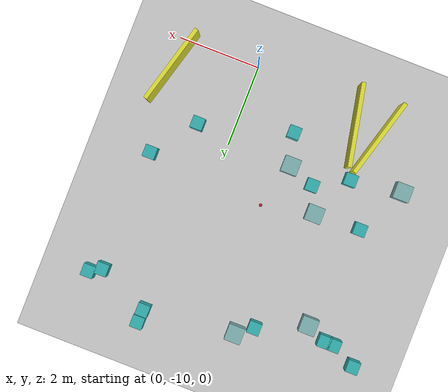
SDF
<sdf version="1.7">
 <world name="default">
  <model name="ground_plane">
   <static>1</static>
   <link name="link">
    <collision name="collision">
     <geometry><plane><normal>0 0 1</normal><size>100 100</size></plane></geometry>
     <surface><friction><ode><mu>100</mu><mu2>50</mu2></ode></friction></surface>
    </collision>
    <visual name="visual">
     <cast_shadows>0</cast_shadows>
     <geometry><plane><normal>0 0 1</normal><size>100 100</size></plane></geometry>
     <material>
      <script><uri>file://media/materials/scripts/gazebo.material</uri><name>Gazebo/Grey</name></script>
     </material>
    </visual>
   </link>
  </model>
  <model name="fl4sr_real_arena_8_target">
   <model name="target_ball_6">
    <link name="link">
     <pose>0 0 0.0375 0 -0 0</pose>
     <inertial>
      <mass>0.1467</mass>
      <inertia>
       <ixx>8.25187e-05</ixx>
       <ixy>0</ixy>
       <ixz>0</ixz>
       <iyy>8.25187e-05</iyy>
       <iyz>0</iyz>
       <izz>8.25187e-05</izz>
      </inertia>
     </inertial>
     <velocity_decay><linear>0</linear><angular>0.005</angular></velocity_decay>
     <visual name="visual">
      <geometry><sphere><radius>0.0375</radius></sphere></geometry>
      <material>
       <script><uri>file://media/materials/scripts/gazebo.material</uri><name>Gazebo/Red</name></script>
       <shader type="pixel"/>
      </material>
     </visual>
     <collision name="collision">
      <geometry><sphere><radius>0.0375</radius></sphere></geometry>
      <surface>
       <friction>
        <ode><mu>1</mu><mu2>1</mu2><fdir1>0 0 0</fdir1><slip1>0</slip1><slip2>0</slip2></ode>
        <torsional>
         <coefficient>1</coefficient>
         <patch_radius>0</patch_radius>
         <surface_radius>0.01</surface_radius>
         <use_patch_radius>0</use_patch_radius>
         <ode><slip>0</slip></ode>
        </torsional>
       </friction>
       <bounce><restitution_coefficient>0</restitution_coefficient><threshold>1e+06</threshold></bounce>
       <contact>
        <collide_without_contact>0</collide_without_contact>
        <collide_without_contact_bitmask>1</collide_without_contact_bitmask>
        <collide_bitmask>1</collide_bitmask>
        <ode>
         <soft_cfm>0</soft_cfm>
         <soft_erp>0.2</soft_erp>
         <kp>100000</kp>
         <kd>100</kd>
         <max_vel>100</max_vel>
         <min_depth>0.001</min_depth>
        </ode>
        <bullet>
         <split_impulse>1</split_impulse>
         <split_impulse_penetration_threshold>-0.01</split_impulse_penetration_threshold>
         <soft_cfm>0</soft_cfm>
         <soft_erp>0.2</soft_erp>
         <kp>100000</kp>
         <kd>100</kd>
        </bullet>
       </contact>
      </surface>
     </collision>
    </link>
    <static>0</static>
    <pose>-2.94744 -7.77192 0 0 -0 0</pose>
   </model>
   <static>0</static>
   <pose>1.69407 0.837481 0 0 -0 0</pose>
  </model>
  <model name="unit_box_0.3_0_clone_3">
   <model name="unit_box_0.3">
    <link name="link">
     <inertial>
      <mass>1</mass>
      <inertia>
       <ixx>0.166667</ixx>
       <ixy>0</ixy>
       <ixz>0</ixz>
       <iyy>0.166667</iyy>
       <iyz>0</iyz>
       <izz>0.166667</izz>
      </inertia>
     </inertial>
     <visual name="visual">
      <geometry><box><size>0.3 0.3 0.5</size></box></geometry>
      <material>
       <script><name>Gazebo/Grey</name><uri>file://media/materials/scripts/gazebo.material</uri></script>
       <shader type="pixel"><normal_map>__default__</normal_map></shader>
       <ambient>0.2 0.7 0.7 1</ambient>
       <diffuse>0.7 0.7 0.7 1</diffuse>
       <specular>0.01 0.01 0.01 1</specular>
       <emissive>0 0 0 1</emissive>
      </material>
     </visual>
     <collision name="collision">
      <geometry><box><size>0.3 0.3 0.5</size></box></geometry>
      <surface>
       <friction>
        <ode><mu>1</mu><mu2>1</mu2><fdir1>0 0 0</fdir1><slip1>0</slip1><slip2>0</slip2></ode>
        <torsional>
         <coefficient>1</coefficient>
         <patch_radius>0</patch_radius>
         <surface_radius>0</surface_radius>
         <use_patch_radius>1</use_patch_radius>
         <ode><slip>0</slip></ode>
        </torsional>
       </friction>
       <bounce><restitution_coefficient>0</restitution_coefficient><threshold>1e+06</threshold></bounce>
       <contact>
        <collide_without_contact>0</collide_without_contact>
        <collide_without_contact_bitmask>1</collide_without_contact_bitmask>
        <collide_bitmask>1</collide_bitmask>
        <ode>
         <soft_cfm>0</soft_cfm>
         <soft_erp>0.2</soft_erp>
         <kp>1e+13</kp>
         <kd>1</kd>
         <max_vel>0.01</max_vel>
         <min_depth>0</min_depth>
        </ode>
        <bullet>
         <split_impulse>1</split_impulse>
         <split_impulse_penetration_threshold>-0.01</split_impulse_penetration_threshold>
         <soft_cfm>0</soft_cfm>
         <soft_erp>0.2</soft_erp>
         <kp>1e+13</kp>
         <kd>1</kd>
        </bullet>
       </contact>
      </surface>
     </collision>
    </link>
    <static>0</static>
    <pose>1e-06 2e-06 0 0 -0 0</pose>
   </model>
   <static>1</static>
   <pose>1.99994 -4.00002 0.25 0 0 -1e-06</pose>
  </model>
  <model name="unit_box_0.3_0_clone_4">
   <model name="unit_box_0.3">
    <link name="link">
     <inertial>
      <mass>1</mass>
      <inertia>
       <ixx>0.166667</ixx>
       <ixy>0</ixy>
       <ixz>0</ixz>
       <iyy>0.166667</iyy>
       <iyz>0</iyz>
       <izz>0.166667</izz>
      </inertia>
     </inertial>
     <visual name="visual">
      <geometry><box><size>0.3 0.3 0.5</size></box></geometry>
      <material>
       <script><name>Gazebo/Grey</name><uri>file://media/materials/scripts/gazebo.material</uri></script>
       <shader type="pixel"><normal_map>__default__</normal_map></shader>
       <ambient>0.2 0.7 0.7 1</ambient>
       <diffuse>0.7 0.7 0.7 1</diffuse>
       <specular>0.01 0.01 0.01 1</specular>
       <emissive>0 0 0 1</emissive>
      </material>
     </visual>
     <collision name="collision">
      <geometry><box><size>0.3 0.3 0.5</size></box></geometry>
      <surface>
       <friction>
        <ode><mu>1</mu><mu2>1</mu2><fdir1>0 0 0</fdir1><slip1>0</slip1><slip2>0</slip2></ode>
        <torsional>
         <coefficient>1</coefficient>
         <patch_radius>0</patch_radius>
         <surface_radius>0</surface_radius>
         <use_patch_radius>1</use_patch_radius>
         <ode><slip>0</slip></ode>
        </torsional>
       </friction>
       <bounce><restitution_coefficient>0</restitution_coefficient><threshold>1e+06</threshold></bounce>
       <contact>
        <collide_without_contact>0</collide_without_contact>
        <collide_without_contact_bitmask>1</collide_without_contact_bitmask>
        <collide_bitmask>1</collide_bitmask>
        <ode>
         <soft_cfm>0</soft_cfm>
         <soft_erp>0.2</soft_erp>
         <kp>1e+13</kp>
         <kd>1</kd>
         <max_vel>0.01</max_vel>
         <min_depth>0</min_depth>
        </ode>
        <bullet>
         <split_impulse>1</split_impulse>
         <split_impulse_penetration_threshold>-0.01</split_impulse_penetration_threshold>
         <soft_cfm>0</soft_cfm>
         <soft_erp>0.2</soft_erp>
         <kp>1e+13</kp>
         <kd>1</kd>
        </bullet>
       </contact>
      </surface>
     </collision>
    </link>
    <static>0</static>
    <pose>1e-06 2e-06 0 0 -0 0</pose>
   </model>
   <static>1</static>
   <pose>1.71229 -4.15614 0.25 0 -0 0</pose>
  </model>
  <model name="unit_box_0.3_0_clone_4_clone">
   <model name="unit_box_0.3">
    <link name="link">
     <inertial>
      <mass>1</mass>
      <inertia>
       <ixx>0.166667</ixx>
       <ixy>0</ixy>
       <ixz>0</ixz>
       <iyy>0.166667</iyy>
       <iyz>0</iyz>
       <izz>0.166667</izz>
      </inertia>
     </inertial>
     <visual name="visual">
      <geometry><box><size>0.3 0.3 0.5</size></box></geometry>
      <material>
       <script><name>Gazebo/Grey</name><uri>file://media/materials/scripts/gazebo.material</uri></script>
       <shader type="pixel"><normal_map>__default__</normal_map></shader>
       <ambient>0.2 0.7 0.7 1</ambient>
       <diffuse>0.7 0.7 0.7 1</diffuse>
       <specular>0.01 0.01 0.01 1</specular>
       <emissive>0 0 0 1</emissive>
      </material>
     </visual>
     <collision name="collision">
      <geometry><box><size>0.3 0.3 0.5</size></box></geometry>
      <surface>
       <friction>
        <ode><mu>1</mu><mu2>1</mu2><fdir1>0 0 0</fdir1><slip1>0</slip1><slip2>0</slip2></ode>
        <torsional>
         <coefficient>1</coefficient>
         <patch_radius>0</patch_radius>
         <surface_radius>0</surface_radius>
         <use_patch_radius>1</use_patch_radius>
         <ode><slip>0</slip></ode>
        </torsional>
       </friction>
       <bounce><restitution_coefficient>0</restitution_coefficient><threshold>1e+06</threshold></bounce>
       <contact>
        <collide_without_contact>0</collide_without_contact>
        <collide_without_contact_bitmask>1</collide_without_contact_bitmask>
        <collide_bitmask>1</collide_bitmask>
        <ode>
         <soft_cfm>0</soft_cfm>
         <soft_erp>0.2</soft_erp>
         <kp>1e+13</kp>
         <kd>1</kd>
         <max_vel>0.01</max_vel>
         <min_depth>0</min_depth>
        </ode>
        <bullet>
         <split_impulse>1</split_impulse>
         <split_impulse_penetration_threshold>-0.01</split_impulse_penetration_threshold>
         <soft_cfm>0</soft_cfm>
         <soft_erp>0.2</soft_erp>
         <kp>1e+13</kp>
         <kd>1</kd>
        </bullet>
       </contact>
      </surface>
     </collision>
    </link>
    <static>0</static>
    <pose>1e-06 2e-06 0 0 -0 0</pose>
   </model>
   <static>1</static>
   <pose>0.457679 -3.60084 0.25 0 -0 0</pose>
  </model>
  <model name="unit_box_0.3_0_clone_4_clone_0">
   <model name="unit_box_0.3">
    <link name="link">
     <inertial>
      <mass>1</mass>
      <inertia>
       <ixx>0.166667</ixx>
       <ixy>0</ixy>
       <ixz>0</ixz>
       <iyy>0.166667</iyy>
       <iyz>0</iyz>
       <izz>0.166667</izz>
      </inertia>
     </inertial>
     <visual name="visual">
      <geometry><box><size>0.3 0.3 0.5</size></box></geometry>
      <material>
       <script><name>Gazebo/Grey</name><uri>file://media/materials/scripts/gazebo.material</uri></script>
       <shader type="pixel"><normal_map>__default__</normal_map></shader>
       <ambient>0.2 0.7 0.7 1</ambient>
       <diffuse>0.7 0.7 0.7 1</diffuse>
       <specular>0.01 0.01 0.01 1</specular>
       <emissive>0 0 0 1</emissive>
      </material>
     </visual>
     <collision name="collision">
      <geometry><box><size>0.3 0.3 0.5</size></box></geometry>
      <surface>
       <friction>
        <ode><mu>1</mu><mu2>1</mu2><fdir1>0 0 0</fdir1><slip1>0</slip1><slip2>0</slip2></ode>
        <torsional>
         <coefficient>1</coefficient>
         <patch_radius>0</patch_radius>
         <surface_radius>0</surface_radius>
         <use_patch_radius>1</use_patch_radius>
         <ode><slip>0</slip></ode>
        </torsional>
       </friction>
       <bounce><restitution_coefficient>0</restitution_coefficient><threshold>1e+06</threshold></bounce>
       <contact>
        <collide_without_contact>0</collide_without_contact>
        <collide_without_contact_bitmask>1</collide_without_contact_bitmask>
        <collide_bitmask>1</collide_bitmask>
        <ode>
         <soft_cfm>0</soft_cfm>
         <soft_erp>0.2</soft_erp>
         <kp>1e+13</kp>
         <kd>1</kd>
         <max_vel>0.01</max_vel>
         <min_depth>0</min_depth>
        </ode>
        <bullet>
         <split_impulse>1</split_impulse>
         <split_impulse_penetration_threshold>-0.01</split_impulse_penetration_threshold>
         <soft_cfm>0</soft_cfm>
         <soft_erp>0.2</soft_erp>
         <kp>1e+13</kp>
         <kd>1</kd>
        </bullet>
       </contact>
      </surface>
     </collision>
    </link>
    <static>0</static>
    <pose>1e-06 2e-06 0 0 -0 0</pose>
   </model>
   <static>1</static>
   <pose>0.471812 -3.28983 0.25 -0 -0 -0</pose>
  </model>
  <model name="unit_box_0.3_0_clone_4_clone_1">
   <model name="unit_box_0.3">
    <link name="link">
     <inertial>
      <mass>1</mass>
      <inertia>
       <ixx>0.166667</ixx>
       <ixy>0</ixy>
       <ixz>0</ixz>
       <iyy>0.166667</iyy>
       <iyz>0</iyz>
       <izz>0.166667</izz>
      </inertia>
     </inertial>
     <visual name="visual">
      <geometry><box><size>0.3 0.3 0.5</size></box></geometry>
      <material>
       <script><name>Gazebo/Grey</name><uri>file://media/materials/scripts/gazebo.material</uri></script>
       <shader type="pixel"><normal_map>__default__</normal_map></shader>
       <ambient>0.2 0.7 0.7 1</ambient>
       <diffuse>0.7 0.7 0.7 1</diffuse>
       <specular>0.01 0.01 0.01 1</specular>
       <emissive>0 0 0 1</emissive>
      </material>
     </visual>
     <collision name="collision">
      <geometry><box><size>0.3 0.3 0.5</size></box></geometry>
      <surface>
       <friction>
        <ode><mu>1</mu><mu2>1</mu2><fdir1>0 0 0</fdir1><slip1>0</slip1><slip2>0</slip2></ode>
        <torsional>
         <coefficient>1</coefficient>
         <patch_radius>0</patch_radius>
         <surface_radius>0</surface_radius>
         <use_patch_radius>1</use_patch_radius>
         <ode><slip>0</slip></ode>
        </torsional>
       </friction>
       <bounce><restitution_coefficient>0</restitution_coefficient><threshold>1e+06</threshold></bounce>
       <contact>
        <collide_without_contact>0</collide_without_contact>
        <collide_without_contact_bitmask>1</collide_without_contact_bitmask>
        <collide_bitmask>1</collide_bitmask>
        <ode>
         <soft_cfm>0</soft_cfm>
         <soft_erp>0.2</soft_erp>
         <kp>1e+13</kp>
         <kd>1</kd>
         <max_vel>0.01</max_vel>
         <min_depth>0</min_depth>
        </ode>
        <bullet>
         <split_impulse>1</split_impulse>
         <split_impulse_penetration_threshold>-0.01</split_impulse_penetration_threshold>
         <soft_cfm>0</soft_cfm>
         <soft_erp>0.2</soft_erp>
         <kp>1e+13</kp>
         <kd>1</kd>
        </bullet>
       </contact>
      </surface>
     </collision>
    </link>
    <static>0</static>
    <pose>1e-06 2e-06 0 0 -0 0</pose>
   </model>
   <static>1</static>
   <pose>1.65568 -7.15642 0.25 0 -0 0</pose>
  </model>
  <model name="unit_box_0.3_0_clone_4_clone_3">
   <model name="unit_box_0.3">
    <link name="link">
     <inertial>
      <mass>1</mass>
      <inertia>
       <ixx>0.166667</ixx>
       <ixy>0</ixy>
       <ixz>0</ixz>
       <iyy>0.166667</iyy>
       <iyz>0</iyz>
       <izz>0.166667</izz>
      </inertia>
     </inertial>
     <visual name="visual">
      <geometry><box><size>0.3 0.3 0.5</size></box></geometry>
      <material>
       <script><name>Gazebo/Grey</name><uri>file://media/materials/scripts/gazebo.material</uri></script>
       <shader type="pixel"><normal_map>__default__</normal_map></shader>
       <ambient>0.2 0.7 0.7 1</ambient>
       <diffuse>0.7 0.7 0.7 1</diffuse>
       <specular>0.01 0.01 0.01 1</specular>
       <emissive>0 0 0 1</emissive>
      </material>
     </visual>
     <collision name="collision">
      <geometry><box><size>0.3 0.3 0.5</size></box></geometry>
      <surface>
       <friction>
        <ode><mu>1</mu><mu2>1</mu2><fdir1>0 0 0</fdir1><slip1>0</slip1><slip2>0</slip2></ode>
        <torsional>
         <coefficient>1</coefficient>
         <patch_radius>0</patch_radius>
         <surface_radius>0</surface_radius>
         <use_patch_radius>1</use_patch_radius>
         <ode><slip>0</slip></ode>
        </torsional>
       </friction>
       <bounce><restitution_coefficient>0</restitution_coefficient><threshold>1e+06</threshold></bounce>
       <contact>
        <collide_without_contact>0</collide_without_contact>
        <collide_without_contact_bitmask>1</collide_without_contact_bitmask>
        <collide_bitmask>1</collide_bitmask>
        <ode>
         <soft_cfm>0</soft_cfm>
         <soft_erp>0.2</soft_erp>
         <kp>1e+13</kp>
         <kd>1</kd>
         <max_vel>0.01</max_vel>
         <min_depth>0</min_depth>
        </ode>
        <bullet>
         <split_impulse>1</split_impulse>
         <split_impulse_penetration_threshold>-0.01</split_impulse_penetration_threshold>
         <soft_cfm>0</soft_cfm>
         <soft_erp>0.2</soft_erp>
         <kp>1e+13</kp>
         <kd>1</kd>
        </bullet>
       </contact>
      </surface>
     </collision>
    </link>
    <static>0</static>
    <pose>1e-06 2e-06 0 0 -0 0</pose>
   </model>
   <static>1</static>
   <pose>0.852455 -8.20594 0.25 0 -0 0</pose>
  </model>
  <model name="wooden_wall_2_1_clone">
   <link name="link_1">
    <inertial>
     <mass>1</mass>
     <inertia>
      <ixx>0.166667</ixx>
      <ixy>0</ixy>
      <ixz>0</ixz>
      <iyy>0.166667</iyy>
      <iyz>0</iyz>
      <izz>0.166667</izz>
     </inertia>
    </inertial>
    <visual name="visual">
     <geometry><box><size>2 0.1 1</size></box></geometry>
     <material>
      <lighting>1</lighting>
      <script><uri>file://media/materials/scripts/gazebo.material</uri><name>Gazebo/Grey</name></script>
      <shader type="pixel"><normal_map>__default__</normal_map></shader>
      <ambient>0.9 0.9 0.2 1</ambient>
      <diffuse>0.7 0.7 0.7 1</diffuse>
      <specular>0.01 0.01 0.01 1</specular>
      <emissive>0 0 0 1</emissive>
     </material>
    </visual>
    <collision name="collision">
     <geometry><box><size>2 0.1 1</size></box></geometry>
     <surface>
      <friction>
       <ode><mu>1</mu><mu2>1</mu2><fdir1>0 0 0</fdir1><slip1>0</slip1><slip2>0</slip2></ode>
       <torsional>
        <coefficient>1</coefficient>
        <patch_radius>0</patch_radius>
        <surface_radius>0</surface_radius>
        <use_patch_radius>1</use_patch_radius>
        <ode><slip>0</slip></ode>
       </torsional>
      </friction>
      <bounce><restitution_coefficient>0</restitution_coefficient><threshold>1e+06</threshold></bounce>
      <contact>
       <collide_without_contact>0</collide_without_contact>
       <collide_without_contact_bitmask>1</collide_without_contact_bitmask>
       <collide_bitmask>1</collide_bitmask>
       <ode>
        <soft_cfm>0</soft_cfm>
        <soft_erp>0.2</soft_erp>
        <kp>1e+13</kp>
        <kd>1</kd>
        <max_vel>0.01</max_vel>
        <min_depth>0</min_depth>
       </ode>
       <bullet>
        <split_impulse>1</split_impulse>
        <split_impulse_penetration_threshold>-0.01</split_impulse_penetration_threshold>
        <soft_cfm>0</soft_cfm>
        <soft_erp>0.2</soft_erp>
        <kp>1e+13</kp>
        <kd>1</kd>
       </bullet>
      </contact>
     </surface>
    </collision>
   </link>
   <static>1</static>
   <pose>1.89471 -9.23913 0.499987 -0 1.3e-05 1.3003</pose>
  </model>
  <model name="unit_box_0.4_clone_2_clone">
   <link name="link">
    <inertial>
     <mass>1</mass>
     <inertia>
      <ixx>0.166667</ixx>
      <ixy>0</ixy>
      <ixz>0</ixz>
      <iyy>0.166667</iyy>
      <iyz>0</iyz>
      <izz>0.166667</izz>
     </inertia>
    </inertial>
    <visual name="visual">
     <geometry><box><size>0.4 0.4 0.5</size></box></geometry>
     <material>
      <script><name>Gazebo/Grey</name><uri>file://media/materials/scripts/gazebo.material</uri></script>
      <shader type="pixel"><normal_map>__default__</normal_map></shader>
      <ambient>0.7 0.8 0.4 1</ambient>
      <diffuse>0.5 0.7 0.7 1</diffuse>
      <specular>0.01 0.01 0.01 1</specular>
      <emissive>0 0 0 1</emissive>
     </material>
    </visual>
    <collision name="collision">
     <geometry><box><size>0.4 0.4 0.5</size></box></geometry>
     <surface>
      <friction>
       <ode><mu>1</mu><mu2>1</mu2><fdir1>0 0 0</fdir1><slip1>0</slip1><slip2>0</slip2></ode>
       <torsional>
        <coefficient>1</coefficient>
        <patch_radius>0</patch_radius>
        <surface_radius>0</surface_radius>
        <use_patch_radius>1</use_patch_radius>
        <ode><slip>0</slip></ode>
       </torsional>
      </friction>
      <bounce><restitution_coefficient>0</restitution_coefficient><threshold>1e+06</threshold></bounce>
      <contact>
       <collide_without_contact>0</collide_without_contact>
       <collide_without_contact_bitmask>1</collide_without_contact_bitmask>
       <collide_bitmask>1</collide_bitmask>
       <ode>
        <soft_cfm>0</soft_cfm>
        <soft_erp>0.2</soft_erp>
        <kp>1e+13</kp>
        <kd>1</kd>
        <max_vel>0.01</max_vel>
        <min_depth>0</min_depth>
       </ode>
       <bullet>
        <split_impulse>1</split_impulse>
        <split_impulse_penetration_threshold>-0.01</split_impulse_penetration_threshold>
        <soft_cfm>0</soft_cfm>
        <soft_erp>0.2</soft_erp>
        <kp>1e+13</kp>
        <kd>1</kd>
       </bullet>
      </contact>
     </surface>
    </collision>
   </link>
   <static>0</static>
   <pose>-1.78174 -3.86046 0.25 0 -0 0</pose>
  </model>
  <model name="unit_box_0.4_clone_2_clone_0">
   <link name="link">
    <inertial>
     <mass>1</mass>
     <inertia>
      <ixx>0.166667</ixx>
      <ixy>0</ixy>
      <ixz>0</ixz>
      <iyy>0.166667</iyy>
      <iyz>0</iyz>
      <izz>0.166667</izz>
     </inertia>
    </inertial>
    <visual name="visual">
     <geometry><box><size>0.4 0.4 0.5</size></box></geometry>
     <material>
      <script><name>Gazebo/Grey</name><uri>file://media/materials/scripts/gazebo.material</uri></script>
      <shader type="pixel"><normal_map>__default__</normal_map></shader>
      <ambient>0.7 0.8 0.4 1</ambient>
      <diffuse>0.5 0.7 0.7 1</diffuse>
      <specular>0.01 0.01 0.01 1</specular>
      <emissive>0 0 0 1</emissive>
     </material>
    </visual>
    <collision name="collision">
     <geometry><box><size>0.4 0.4 0.5</size></box></geometry>
     <surface>
      <friction>
       <ode><mu>1</mu><mu2>1</mu2><fdir1>0 0 0</fdir1><slip1>0</slip1><slip2>0</slip2></ode>
       <torsional>
        <coefficient>1</coefficient>
        <patch_radius>0</patch_radius>
        <surface_radius>0</surface_radius>
        <use_patch_radius>1</use_patch_radius>
        <ode><slip>0</slip></ode>
       </torsional>
      </friction>
      <bounce><restitution_coefficient>0</restitution_coefficient><threshold>1e+06</threshold></bounce>
      <contact>
       <collide_without_contact>0</collide_without_contact>
       <collide_without_contact_bitmask>1</collide_without_contact_bitmask>
       <collide_bitmask>1</collide_bitmask>
       <ode>
        <soft_cfm>0</soft_cfm>
        <soft_erp>0.2</soft_erp>
        <kp>1e+13</kp>
        <kd>1</kd>
        <max_vel>0.01</max_vel>
        <min_depth>0</min_depth>
       </ode>
       <bullet>
        <split_impulse>1</split_impulse>
        <split_impulse_penetration_threshold>-0.01</split_impulse_penetration_threshold>
        <soft_cfm>0</soft_cfm>
        <soft_erp>0.2</soft_erp>
        <kp>1e+13</kp>
        <kd>1</kd>
       </bullet>
      </contact>
     </surface>
    </collision>
   </link>
   <static>0</static>
   <pose>-3.34719 -4.67651 0.25 0 -0 0</pose>
  </model>
  <model name="unit_box_0.3_0_clone_0_clone_clone_clone">
   <model name="unit_box_0.3">
    <link name="link">
     <inertial>
      <mass>1</mass>
      <inertia>
       <ixx>0.166667</ixx>
       <ixy>0</ixy>
       <ixz>0</ixz>
       <iyy>0.166667</iyy>
       <iyz>0</iyz>
       <izz>0.166667</izz>
      </inertia>
     </inertial>
     <visual name="visual">
      <geometry><box><size>0.3 0.3 0.5</size></box></geometry>
      <material>
       <script><name>Gazebo/Grey</name><uri>file://media/materials/scripts/gazebo.material</uri></script>
       <shader type="pixel"><normal_map>__default__</normal_map></shader>
       <ambient>0.2 0.7 0.7 1</ambient>
       <diffuse>0.7 0.7 0.7 1</diffuse>
       <specular>0.01 0.01 0.01 1</specular>
       <emissive>0 0 0 1</emissive>
      </material>
     </visual>
     <collision name="collision">
      <geometry><box><size>0.3 0.3 0.5</size></box></geometry>
      <surface>
       <friction>
        <ode><mu>1</mu><mu2>1</mu2><fdir1>0 0 0</fdir1><slip1>0</slip1><slip2>0</slip2></ode>
        <torsional>
         <coefficient>1</coefficient>
         <patch_radius>0</patch_radius>
         <surface_radius>0</surface_radius>
         <use_patch_radius>1</use_patch_radius>
         <ode><slip>0</slip></ode>
        </torsional>
       </friction>
       <bounce><restitution_coefficient>0</restitution_coefficient><threshold>1e+06</threshold></bounce>
       <contact>
        <collide_without_contact>0</collide_without_contact>
        <collide_without_contact_bitmask>1</collide_without_contact_bitmask>
        <collide_bitmask>1</collide_bitmask>
        <ode>
         <soft_cfm>0</soft_cfm>
         <soft_erp>0.2</soft_erp>
         <kp>1e+13</kp>
         <kd>1</kd>
         <max_vel>0.01</max_vel>
         <min_depth>0</min_depth>
        </ode>
        <bullet>
         <split_impulse>1</split_impulse>
         <split_impulse_penetration_threshold>-0.01</split_impulse_penetration_threshold>
         <soft_cfm>0</soft_cfm>
         <soft_erp>0.2</soft_erp>
         <kp>1e+13</kp>
         <kd>1</kd>
        </bullet>
       </contact>
      </surface>
     </collision>
    </link>
    <static>0</static>
    <pose>1e-06 2e-06 0 0 -0 0</pose>
   </model>
   <static>1</static>
   <pose>-2.16473 -4.1603 0.25 0 0 -1e-06</pose>
  </model>
  <model name="unit_box_0.3_0_clone_0_clone_clone_clone_0">
   <model name="unit_box_0.3">
    <link name="link">
     <inertial>
      <mass>1</mass>
      <inertia>
       <ixx>0.166667</ixx>
       <ixy>0</ixy>
       <ixz>0</ixz>
       <iyy>0.166667</iyy>
       <iyz>0</iyz>
       <izz>0.166667</izz>
      </inertia>
     </inertial>
     <visual name="visual">
      <geometry><box><size>0.3 0.3 0.5</size></box></geometry>
      <material>
       <script><name>Gazebo/Grey</name><uri>file://media/materials/scripts/gazebo.material</uri></script>
       <shader type="pixel"><normal_map>__default__</normal_map></shader>
       <ambient>0.2 0.7 0.7 1</ambient>
       <diffuse>0.7 0.7 0.7 1</diffuse>
       <specular>0.01 0.01 0.01 1</specular>
       <emissive>0 0 0 1</emissive>
      </material>
     </visual>
     <collision name="collision">
      <geometry><box><size>0.3 0.3 0.5</size></box></geometry>
      <surface>
       <friction>
        <ode><mu>1</mu><mu2>1</mu2><fdir1>0 0 0</fdir1><slip1>0</slip1><slip2>0</slip2></ode>
        <torsional>
         <coefficient>1</coefficient>
         <patch_radius>0</patch_radius>
         <surface_radius>0</surface_radius>
         <use_patch_radius>1</use_patch_radius>
         <ode><slip>0</slip></ode>
        </torsional>
       </friction>
       <bounce><restitution_coefficient>0</restitution_coefficient><threshold>1e+06</threshold></bounce>
       <contact>
        <collide_without_contact>0</collide_without_contact>
        <collide_without_contact_bitmask>1</collide_without_contact_bitmask>
        <collide_bitmask>1</collide_bitmask>
        <ode>
         <soft_cfm>0</soft_cfm>
         <soft_erp>0.2</soft_erp>
         <kp>1e+13</kp>
         <kd>1</kd>
         <max_vel>0.01</max_vel>
         <min_depth>0</min_depth>
        </ode>
        <bullet>
         <split_impulse>1</split_impulse>
         <split_impulse_penetration_threshold>-0.01</split_impulse_penetration_threshold>
         <soft_cfm>0</soft_cfm>
         <soft_erp>0.2</soft_erp>
         <kp>1e+13</kp>
         <kd>1</kd>
        </bullet>
       </contact>
      </surface>
     </collision>
    </link>
    <static>0</static>
    <pose>1e-06 2e-06 0 0 -0 0</pose>
   </model>
   <static>1</static>
   <pose>-3.8303 -4.46004 0.25 0 -0 0</pose>
  </model>
  <model name="unit_box_0.3_0_clone_0_clone_clone_clone_1">
   <model name="unit_box_0.3">
    <link name="link">
     <inertial>
      <mass>1</mass>
      <inertia>
       <ixx>0.166667</ixx>
       <ixy>0</ixy>
       <ixz>0</ixz>
       <iyy>0.166667</iyy>
       <iyz>0</iyz>
       <izz>0.166667</izz>
      </inertia>
     </inertial>
     <visual name="visual">
      <geometry><box><size>0.3 0.3 0.5</size></box></geometry>
      <material>
       <script><name>Gazebo/Grey</name><uri>file://media/materials/scripts/gazebo.material</uri></script>
       <shader type="pixel"><normal_map>__default__</normal_map></shader>
       <ambient>0.2 0.7 0.7 1</ambient>
       <diffuse>0.7 0.7 0.7 1</diffuse>
       <specular>0.01 0.01 0.01 1</specular>
       <emissive>0 0 0 1</emissive>
      </material>
     </visual>
     <collision name="collision">
      <geometry><box><size>0.3 0.3 0.5</size></box></geometry>
      <surface>
       <friction>
        <ode><mu>1</mu><mu2>1</mu2><fdir1>0 0 0</fdir1><slip1>0</slip1><slip2>0</slip2></ode>
        <torsional>
         <coefficient>1</coefficient>
         <patch_radius>0</patch_radius>
         <surface_radius>0</surface_radius>
         <use_patch_radius>1</use_patch_radius>
         <ode><slip>0</slip></ode>
        </torsional>
       </friction>
       <bounce><restitution_coefficient>0</restitution_coefficient><threshold>1e+06</threshold></bounce>
       <contact>
        <collide_without_contact>0</collide_without_contact>
        <collide_without_contact_bitmask>1</collide_without_contact_bitmask>
        <collide_bitmask>1</collide_bitmask>
        <ode>
         <soft_cfm>0</soft_cfm>
         <soft_erp>0.2</soft_erp>
         <kp>1e+13</kp>
         <kd>1</kd>
         <max_vel>0.01</max_vel>
         <min_depth>0</min_depth>
        </ode>
        <bullet>
         <split_impulse>1</split_impulse>
         <split_impulse_penetration_threshold>-0.01</split_impulse_penetration_threshold>
         <soft_cfm>0</soft_cfm>
         <soft_erp>0.2</soft_erp>
         <kp>1e+13</kp>
         <kd>1</kd>
        </bullet>
       </contact>
      </surface>
     </collision>
    </link>
    <static>0</static>
    <pose>1e-06 2e-06 0 0 -0 0</pose>
   </model>
   <static>1</static>
   <pose>-4.07999 -4.46002 0.25 -0 -0 -1e-06</pose>
  </model>
  <model name="unit_box_0.3_0_clone_0_clone_clone_clone_2">
   <model name="unit_box_0.3">
    <link name="link">
     <inertial>
      <mass>1</mass>
      <inertia>
       <ixx>0.166667</ixx>
       <ixy>0</ixy>
       <ixz>0</ixz>
       <iyy>0.166667</iyy>
       <iyz>0</iyz>
       <izz>0.166667</izz>
      </inertia>
     </inertial>
     <visual name="visual">
      <geometry><box><size>0.3 0.3 0.5</size></box></geometry>
      <material>
       <script><name>Gazebo/Grey</name><uri>file://media/materials/scripts/gazebo.material</uri></script>
       <shader type="pixel"><normal_map>__default__</normal_map></shader>
       <ambient>0.2 0.7 0.7 1</ambient>
       <diffuse>0.7 0.7 0.7 1</diffuse>
       <specular>0.01 0.01 0.01 1</specular>
       <emissive>0 0 0 1</emissive>
      </material>
     </visual>
     <collision name="collision">
      <geometry><box><size>0.3 0.3 0.5</size></box></geometry>
      <surface>
       <friction>
        <ode><mu>1</mu><mu2>1</mu2><fdir1>0 0 0</fdir1><slip1>0</slip1><slip2>0</slip2></ode>
        <torsional>
         <coefficient>1</coefficient>
         <patch_radius>0</patch_radius>
         <surface_radius>0</surface_radius>
         <use_patch_radius>1</use_patch_radius>
         <ode><slip>0</slip></ode>
        </torsional>
       </friction>
       <bounce><restitution_coefficient>0</restitution_coefficient><threshold>1e+06</threshold></bounce>
       <contact>
        <collide_without_contact>0</collide_without_contact>
        <collide_without_contact_bitmask>1</collide_without_contact_bitmask>
        <collide_bitmask>1</collide_bitmask>
        <ode>
         <soft_cfm>0</soft_cfm>
         <soft_erp>0.2</soft_erp>
         <kp>1e+13</kp>
         <kd>1</kd>
         <max_vel>0.01</max_vel>
         <min_depth>0</min_depth>
        </ode>
        <bullet>
         <split_impulse>1</split_impulse>
         <split_impulse_penetration_threshold>-0.01</split_impulse_penetration_threshold>
         <soft_cfm>0</soft_cfm>
         <soft_erp>0.2</soft_erp>
         <kp>1e+13</kp>
         <kd>1</kd>
        </bullet>
       </contact>
      </surface>
     </collision>
    </link>
    <static>0</static>
    <pose>1e-06 2e-06 0 0 -0 0</pose>
   </model>
   <static>1</static>
   <pose>-4.67966 -4.14361 0.25 0 -0 0</pose>
  </model>
  <model name="wooden_wall_2_1_clone_clone_1">
   <link name="link_1">
    <inertial>
     <mass>1</mass>
     <inertia>
      <ixx>0.166667</ixx>
      <ixy>0</ixy>
      <ixz>0</ixz>
      <iyy>0.166667</iyy>
      <iyz>0</iyz>
      <izz>0.166667</izz>
     </inertia>
    </inertial>
    <visual name="visual">
     <geometry><box><size>2 0.1 1</size></box></geometry>
     <material>
      <lighting>1</lighting>
      <script><uri>file://media/materials/scripts/gazebo.material</uri><name>Gazebo/Grey</name></script>
      <shader type="pixel"><normal_map>__default__</normal_map></shader>
      <ambient>0.9 0.9 0.2 1</ambient>
      <diffuse>0.7 0.7 0.7 1</diffuse>
      <specular>0.01 0.01 0.01 1</specular>
      <emissive>0 0 0 1</emissive>
     </material>
    </visual>
    <collision name="collision">
     <geometry><box><size>2 0.1 1</size></box></geometry>
     <surface>
      <friction>
       <ode><mu>1</mu><mu2>1</mu2><fdir1>0 0 0</fdir1><slip1>0</slip1><slip2>0</slip2></ode>
       <torsional>
        <coefficient>1</coefficient>
        <patch_radius>0</patch_radius>
        <surface_radius>0</surface_radius>
        <use_patch_radius>1</use_patch_radius>
        <ode><slip>0</slip></ode>
       </torsional>
      </friction>
      <bounce><restitution_coefficient>0</restitution_coefficient><threshold>1e+06</threshold></bounce>
      <contact>
       <collide_without_contact>0</collide_without_contact>
       <collide_without_contact_bitmask>1</collide_without_contact_bitmask>
       <collide_bitmask>1</collide_bitmask>
       <ode>
        <soft_cfm>0</soft_cfm>
        <soft_erp>0.2</soft_erp>
        <kp>1e+13</kp>
        <kd>1</kd>
        <max_vel>0.01</max_vel>
        <min_depth>0</min_depth>
       </ode>
       <bullet>
        <split_impulse>1</split_impulse>
        <split_impulse_penetration_threshold>-0.01</split_impulse_penetration_threshold>
        <soft_cfm>0</soft_cfm>
        <soft_erp>0.2</soft_erp>
        <kp>1e+13</kp>
        <kd>1</kd>
       </bullet>
      </contact>
     </surface>
    </collision>
   </link>
   <static>1</static>
   <pose>-3.26098 -9.3923 0.499987 -0 1.3e-05 1.3003</pose>
  </model>
  <model name="wooden_wall_2_1_clone_clone_clone_0">
   <link name="link_1">
    <inertial>
     <mass>1</mass>
     <inertia>
      <ixx>0.166667</ixx>
      <ixy>0</ixy>
      <ixz>0</ixz>
      <iyy>0.166667</iyy>
      <iyz>0</iyz>
      <izz>0.166667</izz>
     </inertia>
    </inertial>
    <visual name="visual">
     <geometry><box><size>2 0.1 1</size></box></geometry>
     <material>
      <lighting>1</lighting>
      <script><uri>file://media/materials/scripts/gazebo.material</uri><name>Gazebo/Grey</name></script>
      <shader type="pixel"><normal_map>__default__</normal_map></shader>
      <ambient>0.9 0.9 0.2 1</ambient>
      <diffuse>0.7 0.7 0.7 1</diffuse>
      <specular>0.01 0.01 0.01 1</specular>
      <emissive>0 0 0 1</emissive>
     </material>
    </visual>
    <collision name="collision">
     <geometry><box><size>2 0.1 1</size></box></geometry>
     <surface>
      <friction>
       <ode><mu>1</mu><mu2>1</mu2><fdir1>0 0 0</fdir1><slip1>0</slip1><slip2>0</slip2></ode>
       <torsional>
        <coefficient>1</coefficient>
        <patch_radius>0</patch_radius>
        <surface_radius>0</surface_radius>
        <use_patch_radius>1</use_patch_radius>
        <ode><slip>0</slip></ode>
       </torsional>
      </friction>
      <bounce><restitution_coefficient>0</restitution_coefficient><threshold>1e+06</threshold></bounce>
      <contact>
       <collide_without_contact>0</collide_without_contact>
       <collide_without_contact_bitmask>1</collide_without_contact_bitmask>
       <collide_bitmask>1</collide_bitmask>
       <ode>
        <soft_cfm>0</soft_cfm>
        <soft_erp>0.2</soft_erp>
        <kp>1e+13</kp>
        <kd>1</kd>
        <max_vel>0.01</max_vel>
        <min_depth>0</min_depth>
       </ode>
       <bullet>
        <split_impulse>1</split_impulse>
        <split_impulse_penetration_threshold>-0.01</split_impulse_penetration_threshold>
        <soft_cfm>0</soft_cfm>
        <soft_erp>0.2</soft_erp>
        <kp>1e+13</kp>
        <kd>1</kd>
       </bullet>
      </contact>
     </surface>
    </collision>
   </link>
   <static>1</static>
   <pose>-2.64409 -9.483 0.499987 6e-06 1.1e-05 1.77408</pose>
  </model>
  <model name="unit_box_0.4_clone_2_clone_clone">
   <link name="link">
    <inertial>
     <mass>1</mass>
     <inertia>
      <ixx>0.166667</ixx>
      <ixy>0</ixy>
      <ixz>0</ixz>
      <iyy>0.166667</iyy>
      <iyz>0</iyz>
      <izz>0.166667</izz>
     </inertia>
    </inertial>
    <visual name="visual">
     <geometry><box><size>0.4 0.4 0.5</size></box></geometry>
     <material>
      <script><name>Gazebo/Grey</name><uri>file://media/materials/scripts/gazebo.material</uri></script>
      <shader type="pixel"><normal_map>__default__</normal_map></shader>
      <ambient>0.7 0.8 0.4 1</ambient>
      <diffuse>0.5 0.7 0.7 1</diffuse>
      <specular>0.01 0.01 0.01 1</specular>
      <emissive>0 0 0 1</emissive>
     </material>
    </visual>
    <collision name="collision">
     <geometry><box><size>0.4 0.4 0.5</size></box></geometry>
     <surface>
      <friction>
       <ode><mu>1</mu><mu2>1</mu2><fdir1>0 0 0</fdir1><slip1>0</slip1><slip2>0</slip2></ode>
       <torsional>
        <coefficient>1</coefficient>
        <patch_radius>0</patch_radius>
        <surface_radius>0</surface_radius>
        <use_patch_radius>1</use_patch_radius>
        <ode><slip>0</slip></ode>
       </torsional>
      </friction>
      <bounce><restitution_coefficient>0</restitution_coefficient><threshold>1e+06</threshold></bounce>
      <contact>
       <collide_without_contact>0</collide_without_contact>
       <collide_without_contact_bitmask>1</collide_without_contact_bitmask>
       <collide_bitmask>1</collide_bitmask>
       <ode>
        <soft_cfm>0</soft_cfm>
        <soft_erp>0.2</soft_erp>
        <kp>1e+13</kp>
        <kd>1</kd>
        <max_vel>0.01</max_vel>
        <min_depth>0</min_depth>
       </ode>
       <bullet>
        <split_impulse>1</split_impulse>
        <split_impulse_penetration_threshold>-0.01</split_impulse_penetration_threshold>
        <soft_cfm>0</soft_cfm>
        <soft_erp>0.2</soft_erp>
        <kp>1e+13</kp>
        <kd>1</kd>
       </bullet>
      </contact>
     </surface>
    </collision>
   </link>
   <static>0</static>
   <pose>-1.57715 -8.06877 0.25 -0 -0 -0</pose>
  </model>
  <model name="unit_box_0.4_clone_2_clone_clone_0">
   <link name="link">
    <inertial>
     <mass>1</mass>
     <inertia>
      <ixx>0.166667</ixx>
      <ixy>0</ixy>
      <ixz>0</ixz>
      <iyy>0.166667</iyy>
      <iyz>0</iyz>
      <izz>0.166667</izz>
     </inertia>
    </inertial>
    <visual name="visual">
     <geometry><box><size>0.4 0.4 0.5</size></box></geometry>
     <material>
      <script><name>Gazebo/Grey</name><uri>file://media/materials/scripts/gazebo.material</uri></script>
      <shader type="pixel"><normal_map>__default__</normal_map></shader>
      <ambient>0.7 0.8 0.4 1</ambient>
      <diffuse>0.5 0.7 0.7 1</diffuse>
      <specular>0.01 0.01 0.01 1</specular>
      <emissive>0 0 0 1</emissive>
     </material>
    </visual>
    <collision name="collision">
     <geometry><box><size>0.4 0.4 0.5</size></box></geometry>
     <surface>
      <friction>
       <ode><mu>1</mu><mu2>1</mu2><fdir1>0 0 0</fdir1><slip1>0</slip1><slip2>0</slip2></ode>
       <torsional>
        <coefficient>1</coefficient>
        <patch_radius>0</patch_radius>
        <surface_radius>0</surface_radius>
        <use_patch_radius>1</use_patch_radius>
        <ode><slip>0</slip></ode>
       </torsional>
      </friction>
      <bounce><restitution_coefficient>0</restitution_coefficient><threshold>1e+06</threshold></bounce>
      <contact>
       <collide_without_contact>0</collide_without_contact>
       <collide_without_contact_bitmask>1</collide_without_contact_bitmask>
       <collide_bitmask>1</collide_bitmask>
       <ode>
        <soft_cfm>0</soft_cfm>
        <soft_erp>0.2</soft_erp>
        <kp>1e+13</kp>
        <kd>1</kd>
        <max_vel>0.01</max_vel>
        <min_depth>0</min_depth>
       </ode>
       <bullet>
        <split_impulse>1</split_impulse>
        <split_impulse_penetration_threshold>-0.01</split_impulse_penetration_threshold>
        <soft_cfm>0</soft_cfm>
        <soft_erp>0.2</soft_erp>
        <kp>1e+13</kp>
        <kd>1</kd>
       </bullet>
      </contact>
     </surface>
    </collision>
   </link>
   <static>0</static>
   <pose>-4.28342 -8.4426 0.25 0 -0 0</pose>
  </model>
  <model name="unit_box_0.4_clone_2_clone_clone_1">
   <link name="link">
    <inertial>
     <mass>1</mass>
     <inertia>
      <ixx>0.166667</ixx>
      <ixy>0</ixy>
      <ixz>0</ixz>
      <iyy>0.166667</iyy>
      <iyz>0</iyz>
      <izz>0.166667</izz>
     </inertia>
    </inertial>
    <visual name="visual">
     <geometry><box><size>0.4 0.4 0.5</size></box></geometry>
     <material>
      <script><name>Gazebo/Grey</name><uri>file://media/materials/scripts/gazebo.material</uri></script>
      <shader type="pixel"><normal_map>__default__</normal_map></shader>
      <ambient>0.7 0.8 0.4 1</ambient>
      <diffuse>0.5 0.7 0.7 1</diffuse>
      <specular>0.01 0.01 0.01 1</specular>
      <emissive>0 0 0 1</emissive>
     </material>
    </visual>
    <collision name="collision">
     <geometry><box><size>0.4 0.4 0.5</size></box></geometry>
     <surface>
      <friction>
       <ode><mu>1</mu><mu2>1</mu2><fdir1>0 0 0</fdir1><slip1>0</slip1><slip2>0</slip2></ode>
       <torsional>
        <coefficient>1</coefficient>
        <patch_radius>0</patch_radius>
        <surface_radius>0</surface_radius>
        <use_patch_radius>1</use_patch_radius>
        <ode><slip>0</slip></ode>
       </torsional>
      </friction>
      <bounce><restitution_coefficient>0</restitution_coefficient><threshold>1e+06</threshold></bounce>
      <contact>
       <collide_without_contact>0</collide_without_contact>
       <collide_without_contact_bitmask>1</collide_without_contact_bitmask>
       <collide_bitmask>1</collide_bitmask>
       <ode>
        <soft_cfm>0</soft_cfm>
        <soft_erp>0.2</soft_erp>
        <kp>1e+13</kp>
        <kd>1</kd>
        <max_vel>0.01</max_vel>
        <min_depth>0</min_depth>
       </ode>
       <bullet>
        <split_impulse>1</split_impulse>
        <split_impulse_penetration_threshold>-0.01</split_impulse_penetration_threshold>
        <soft_cfm>0</soft_cfm>
        <soft_erp>0.2</soft_erp>
        <kp>1e+13</kp>
        <kd>1</kd>
       </bullet>
      </contact>
     </surface>
    </collision>
   </link>
   <static>0</static>
   <pose>-2.51913 -7.20144 0.25 0 -0 0</pose>
  </model>
  <model name="unit_box_0.3_0_clone_0_clone_clone_clone_clone">
   <model name="unit_box_0.3">
    <link name="link">
     <inertial>
      <mass>1</mass>
      <inertia>
       <ixx>0.166667</ixx>
       <ixy>0</ixy>
       <ixz>0</ixz>
       <iyy>0.166667</iyy>
       <iyz>0</iyz>
       <izz>0.166667</izz>
      </inertia>
     </inertial>
     <visual name="visual">
      <geometry><box><size>0.3 0.3 0.5</size></box></geometry>
      <material>
       <script><name>Gazebo/Grey</name><uri>file://media/materials/scripts/gazebo.material</uri></script>
       <shader type="pixel"><normal_map>__default__</normal_map></shader>
       <ambient>0.2 0.7 0.7 1</ambient>
       <diffuse>0.7 0.7 0.7 1</diffuse>
       <specular>0.01 0.01 0.01 1</specular>
       <emissive>0 0 0 1</emissive>
      </material>
     </visual>
     <collision name="collision">
      <geometry><box><size>0.3 0.3 0.5</size></box></geometry>
      <surface>
       <friction>
        <ode><mu>1</mu><mu2>1</mu2><fdir1>0 0 0</fdir1><slip1>0</slip1><slip2>0</slip2></ode>
        <torsional>
         <coefficient>1</coefficient>
         <patch_radius>0</patch_radius>
         <surface_radius>0</surface_radius>
         <use_patch_radius>1</use_patch_radius>
         <ode><slip>0</slip></ode>
        </torsional>
       </friction>
       <bounce><restitution_coefficient>0</restitution_coefficient><threshold>1e+06</threshold></bounce>
       <contact>
        <collide_without_contact>0</collide_without_contact>
        <collide_without_contact_bitmask>1</collide_without_contact_bitmask>
        <collide_bitmask>1</collide_bitmask>
        <ode>
         <soft_cfm>0</soft_cfm>
         <soft_erp>0.2</soft_erp>
         <kp>1e+13</kp>
         <kd>1</kd>
         <max_vel>0.01</max_vel>
         <min_depth>0</min_depth>
        </ode>
        <bullet>
         <split_impulse>1</split_impulse>
         <split_impulse_penetration_threshold>-0.01</split_impulse_penetration_threshold>
         <soft_cfm>0</soft_cfm>
         <soft_erp>0.2</soft_erp>
         <kp>1e+13</kp>
         <kd>1</kd>
        </bullet>
       </contact>
      </surface>
     </collision>
    </link>
    <static>0</static>
    <pose>1e-06 2e-06 0 0 -0 0</pose>
   </model>
   <static>1</static>
   <pose>-2.22005 -7.81463 0.25 0 -0 0</pose>
  </model>
  <model name="unit_box_0.3_0_clone_0_clone_clone_clone_clone_0">
   <model name="unit_box_0.3">
    <link name="link">
     <inertial>
      <mass>1</mass>
      <inertia>
       <ixx>0.166667</ixx>
       <ixy>0</ixy>
       <ixz>0</ixz>
       <iyy>0.166667</iyy>
       <iyz>0</iyz>
       <izz>0.166667</izz>
      </inertia>
     </inertial>
     <visual name="visual">
      <geometry><box><size>0.3 0.3 0.5</size></box></geometry>
      <material>
       <script><name>Gazebo/Grey</name><uri>file://media/materials/scripts/gazebo.material</uri></script>
       <shader type="pixel"><normal_map>__default__</normal_map></shader>
       <ambient>0.2 0.7 0.7 1</ambient>
       <diffuse>0.7 0.7 0.7 1</diffuse>
       <specular>0.01 0.01 0.01 1</specular>
       <emissive>0 0 0 1</emissive>
      </material>
     </visual>
     <collision name="collision">
      <geometry><box><size>0.3 0.3 0.5</size></box></geometry>
      <surface>
       <friction>
        <ode><mu>1</mu><mu2>1</mu2><fdir1>0 0 0</fdir1><slip1>0</slip1><slip2>0</slip2></ode>
        <torsional>
         <coefficient>1</coefficient>
         <patch_radius>0</patch_radius>
         <surface_radius>0</surface_radius>
         <use_patch_radius>1</use_patch_radius>
         <ode><slip>0</slip></ode>
        </torsional>
       </friction>
       <bounce><restitution_coefficient>0</restitution_coefficient><threshold>1e+06</threshold></bounce>
       <contact>
        <collide_without_contact>0</collide_without_contact>
        <collide_without_contact_bitmask>1</collide_without_contact_bitmask>
        <collide_bitmask>1</collide_bitmask>
        <ode>
         <soft_cfm>0</soft_cfm>
         <soft_erp>0.2</soft_erp>
         <kp>1e+13</kp>
         <kd>1</kd>
         <max_vel>0.01</max_vel>
         <min_depth>0</min_depth>
        </ode>
        <bullet>
         <split_impulse>1</split_impulse>
         <split_impulse_penetration_threshold>-0.01</split_impulse_penetration_threshold>
         <soft_cfm>0</soft_cfm>
         <soft_erp>0.2</soft_erp>
         <kp>1e+13</kp>
         <kd>1</kd>
        </bullet>
       </contact>
      </surface>
     </collision>
    </link>
    <static>0</static>
    <pose>1e-06 2e-06 0 0 -0 0</pose>
   </model>
   <static>1</static>
   <pose>-1.36782 -8.83123 0.25 0 -0 0</pose>
  </model>
  <model name="unit_box_0.3_0_clone_0_clone_clone_clone_clone_1">
   <model name="unit_box_0.3">
    <link name="link">
     <inertial>
      <mass>1</mass>
      <inertia>
       <ixx>0.166667</ixx>
       <ixy>0</ixy>
       <ixz>0</ixz>
       <iyy>0.166667</iyy>
       <iyz>0</iyz>
       <izz>0.166667</izz>
      </inertia>
     </inertial>
     <visual name="visual">
      <geometry><box><size>0.3 0.3 0.5</size></box></geometry>
      <material>
       <script><name>Gazebo/Grey</name><uri>file://media/materials/scripts/gazebo.material</uri></script>
       <shader type="pixel"><normal_map>__default__</normal_map></shader>
       <ambient>0.2 0.7 0.7 1</ambient>
       <diffuse>0.7 0.7 0.7 1</diffuse>
       <specular>0.01 0.01 0.01 1</specular>
       <emissive>0 0 0 1</emissive>
      </material>
     </visual>
     <collision name="collision">
      <geometry><box><size>0.3 0.3 0.5</size></box></geometry>
      <surface>
       <friction>
        <ode><mu>1</mu><mu2>1</mu2><fdir1>0 0 0</fdir1><slip1>0</slip1><slip2>0</slip2></ode>
        <torsional>
         <coefficient>1</coefficient>
         <patch_radius>0</patch_radius>
         <surface_radius>0</surface_radius>
         <use_patch_radius>1</use_patch_radius>
         <ode><slip>0</slip></ode>
        </torsional>
       </friction>
       <bounce><restitution_coefficient>0</restitution_coefficient><threshold>1e+06</threshold></bounce>
       <contact>
        <collide_without_contact>0</collide_without_contact>
        <collide_without_contact_bitmask>1</collide_without_contact_bitmask>
        <collide_bitmask>1</collide_bitmask>
        <ode>
         <soft_cfm>0</soft_cfm>
         <soft_erp>0.2</soft_erp>
         <kp>1e+13</kp>
         <kd>1</kd>
         <max_vel>0.01</max_vel>
         <min_depth>0</min_depth>
        </ode>
        <bullet>
         <split_impulse>1</split_impulse>
         <split_impulse_penetration_threshold>-0.01</split_impulse_penetration_threshold>
         <soft_cfm>0</soft_cfm>
         <soft_erp>0.2</soft_erp>
         <kp>1e+13</kp>
         <kd>1</kd>
        </bullet>
       </contact>
      </surface>
     </collision>
    </link>
    <static>0</static>
    <pose>1e-06 2e-06 0 0 -0 0</pose>
   </model>
   <static>1</static>
   <pose>-3.65549 -7.24614 0.25 0 -0 0</pose>
  </model>
  <model name="unit_box_0.3_0_clone_0_clone_clone_clone_clone_2">
   <model name="unit_box_0.3">
    <link name="link">
     <inertial>
      <mass>1</mass>
      <inertia>
       <ixx>0.166667</ixx>
       <ixy>0</ixy>
       <ixz>0</ixz>
       <iyy>0.166667</iyy>
       <iyz>0</iyz>
       <izz>0.166667</izz>
      </inertia>
     </inertial>
     <visual name="visual">
      <geometry><box><size>0.3 0.3 0.5</size></box></geometry>
      <material>
       <script><name>Gazebo/Grey</name><uri>file://media/materials/scripts/gazebo.material</uri></script>
       <shader type="pixel"><normal_map>__default__</normal_map></shader>
       <ambient>0.2 0.7 0.7 1</ambient>
       <diffuse>0.7 0.7 0.7 1</diffuse>
       <specular>0.01 0.01 0.01 1</specular>
       <emissive>0 0 0 1</emissive>
      </material>
     </visual>
     <collision name="collision">
      <geometry><box><size>0.3 0.3 0.5</size></box></geometry>
      <surface>
       <friction>
        <ode><mu>1</mu><mu2>1</mu2><fdir1>0 0 0</fdir1><slip1>0</slip1><slip2>0</slip2></ode>
        <torsional>
         <coefficient>1</coefficient>
         <patch_radius>0</patch_radius>
         <surface_radius>0</surface_radius>
         <use_patch_radius>1</use_patch_radius>
         <ode><slip>0</slip></ode>
        </torsional>
       </friction>
       <bounce><restitution_coefficient>0</restitution_coefficient><threshold>1e+06</threshold></bounce>
       <contact>
        <collide_without_contact>0</collide_without_contact>
        <collide_without_contact_bitmask>1</collide_without_contact_bitmask>
        <collide_bitmask>1</collide_bitmask>
        <ode>
         <soft_cfm>0</soft_cfm>
         <soft_erp>0.2</soft_erp>
         <kp>1e+13</kp>
         <kd>1</kd>
         <max_vel>0.01</max_vel>
         <min_depth>0</min_depth>
        </ode>
        <bullet>
         <split_impulse>1</split_impulse>
         <split_impulse_penetration_threshold>-0.01</split_impulse_penetration_threshold>
         <soft_cfm>0</soft_cfm>
         <soft_erp>0.2</soft_erp>
         <kp>1e+13</kp>
         <kd>1</kd>
        </bullet>
       </contact>
      </surface>
     </collision>
    </link>
    <static>0</static>
    <pose>1e-06 2e-06 0 0 -0 0</pose>
   </model>
   <static>1</static>
   <pose>-3.02579 -8.26484 0.25 0 -0 0.00449</pose>
  </model>
 </world>
</sdf>
